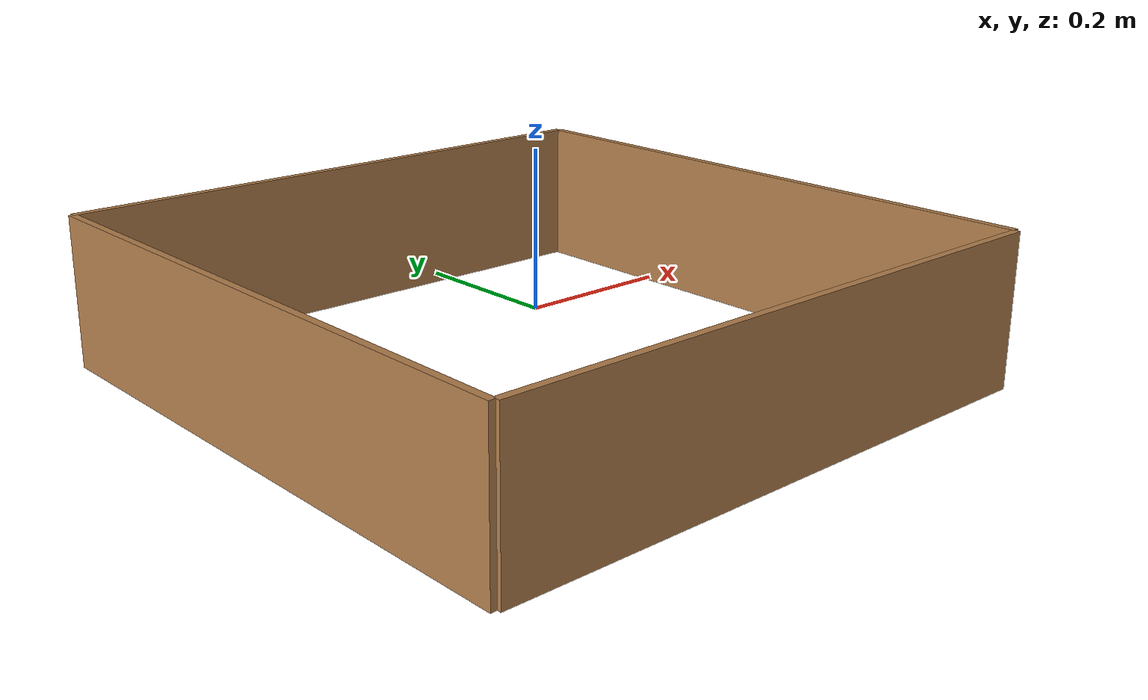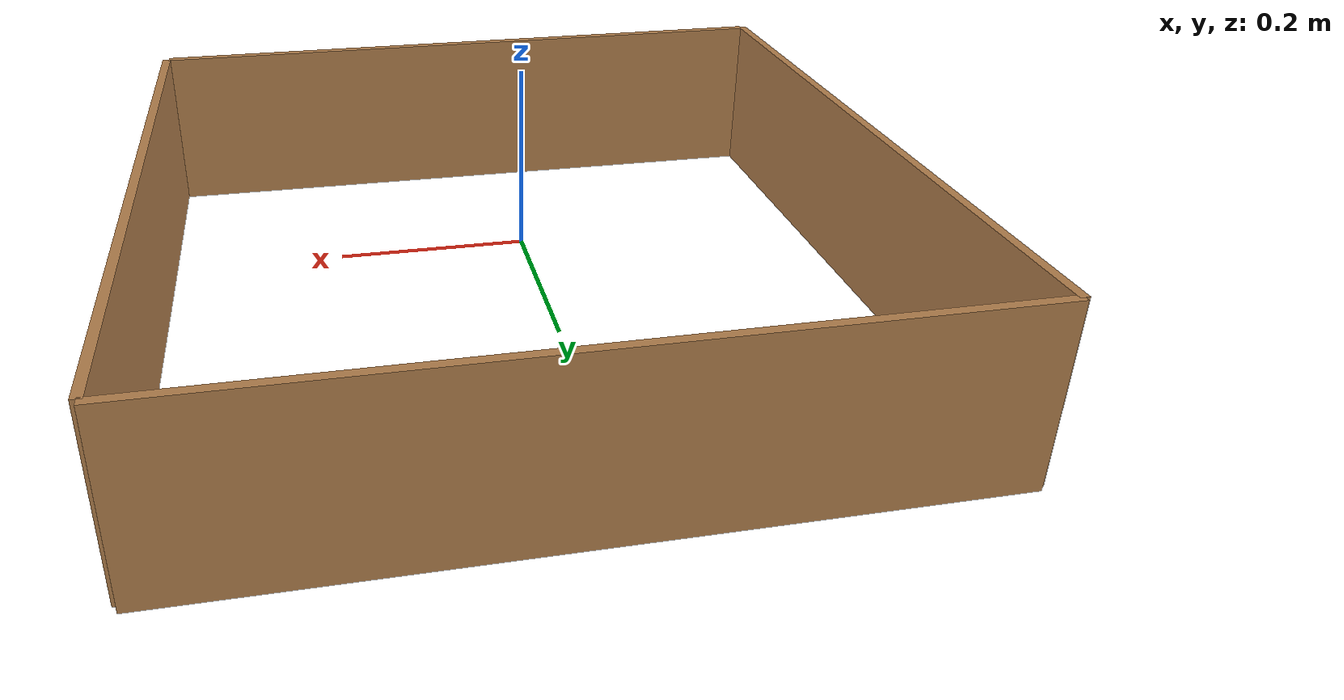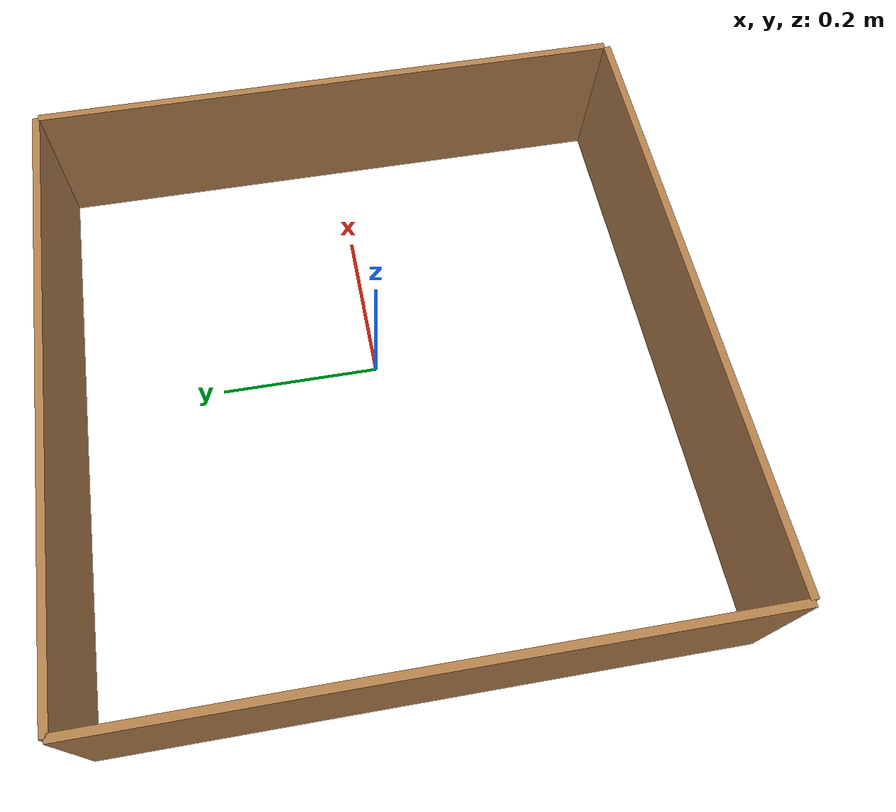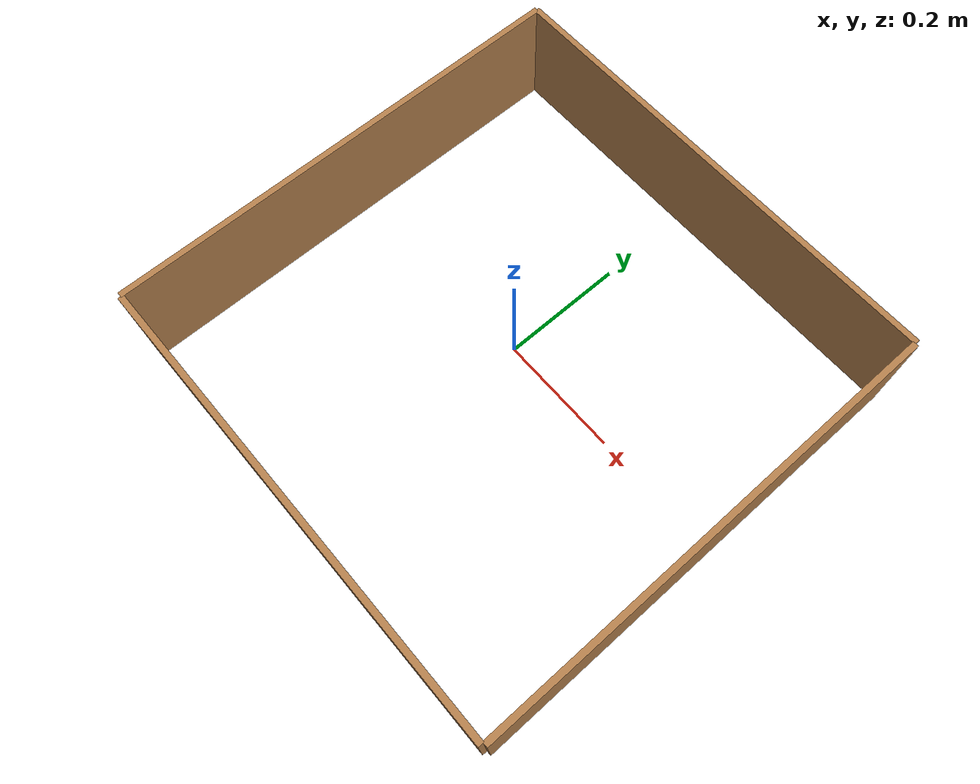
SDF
<?xml version='1.0'?>
<sdf version='1.6'>
    <model name='test_track'>
        <pose frame=''>0 0 0 0 0 0</pose>
        <!-- Static! -->
        <static>1</static>
        <!-- Construction of the walls-->
        <link name='Wall_1'>
            <pose>0 0.405 0.01 0 0 0</pose>
            <collision name='Wall_1_Collision'>
                <geometry>
                    <box>
                        <size>0.81 0.01 0.2</size>
                    </box>
                </geometry>
            </collision>
            <visual name='Wall_1_Visual'>
                <cast_shadows>true</cast_shadows>
                <geometry>
                    <box>
                        <size>0.81 0.01 0.2</size>
                    </box>
                </geometry>
                <material>
                    <script>
                        <uri>file://media/materials/scripts/gazebo.material</uri>
                        <name>Gazebo/Wood</name>
                    </script>
                </material>
                <meta>
                    <layer>0</layer>
                </meta>
            </visual>
        </link>
        <link name='Wall_2'>
            <pose>0.405 0 0.01 0 0 1.5708</pose>
            <collision name='Wall_2_Collision'>
                <geometry>
                    <box>
                        <size>0.804 0.01 0.2</size>
                    </box>
                </geometry>
            </collision>
            <visual name='Wall_2_Visual'>
                <cast_shadows>true</cast_shadows>
                <geometry>
                    <box>
                        <size>0.804 0.01 0.2</size>
                    </box>
                </geometry>
                <material>
                    <script>
                        <uri>file://media/materials/scripts/gazebo.material</uri>
                        <name>Gazebo/Wood</name>
                    </script>
                </material>
            </visual>
        </link>
        <link name='Wall_3'>
            <pose>0 -0.405 0.01 0 0 0</pose>
            <collision name='Wall_3_Collision'>
                <geometry>
                    <box>
                        <size>0.804 0.01 0.2</size>
                    </box>
                </geometry>
            </collision>
            <visual name='Wall_3_Visual'>
                <cast_shadows>true</cast_shadows>
                <geometry>
                    <box>
                        <size>0.804 0.01 0.2</size>
                    </box>
                </geometry>
                <material>
                    <script>
                        <uri>file://media/materials/scripts/gazebo.material</uri>
                        <name>Gazebo/Wood</name>
                    </script>
                </material>
            </visual>
        </link>
        <link name='Wall_4'>
            <pose>-0.405 0 0.01 0 0 1.5708</pose>
            <collision name='Wall_4_Collision'>
                <geometry>
                    <box>
                        <size>0.81 0.01 0.2</size>
                    </box>
                </geometry>
            </collision>
            <visual name='Wall_4_Visual'>
                <cast_shadows>true</cast_shadows>
                <geometry>
                    <box>
                        <size>0.81 0.01 0.2</size>
                    </box>
                </geometry>
                <material>
                    <script>
                        <uri>file://media/materials/scripts/gazebo.material</uri>
                        <name>Gazebo/Wood</name>
                    </script>
                </material>
            </visual>
        </link>
    </model>
</sdf>
